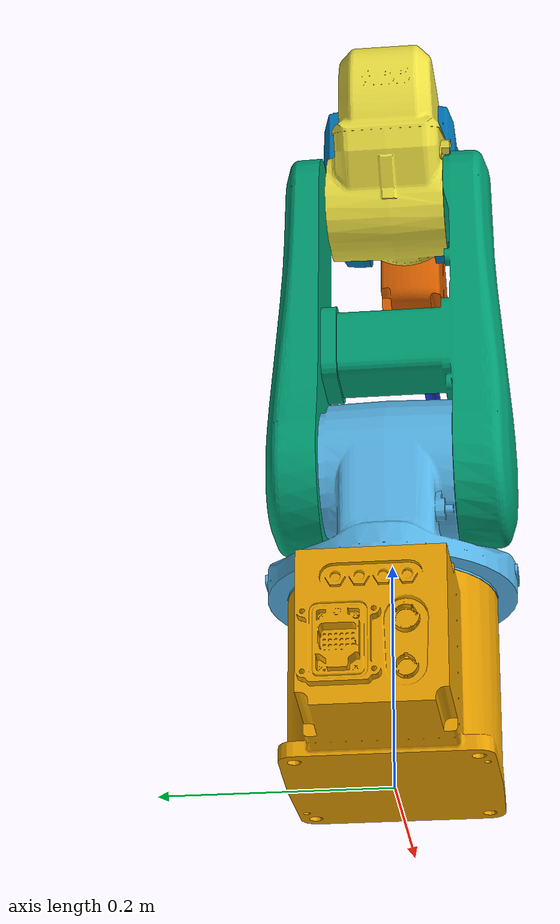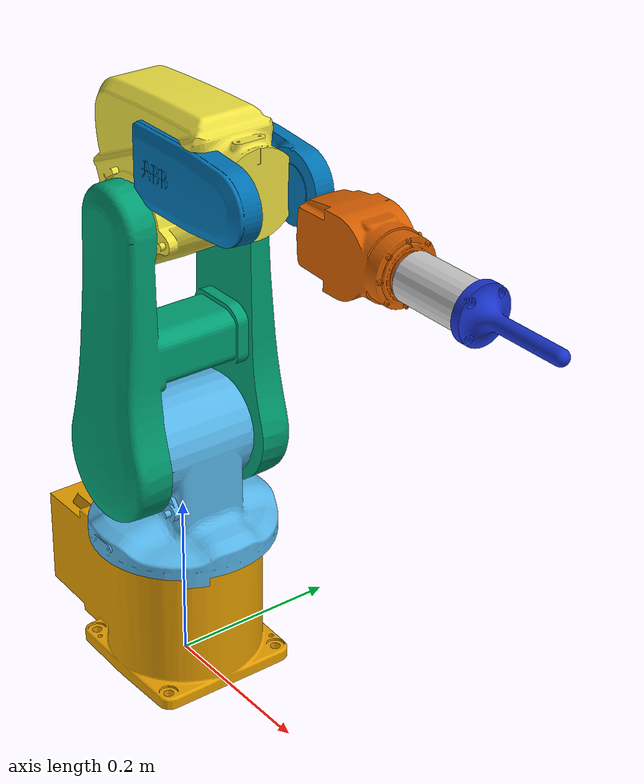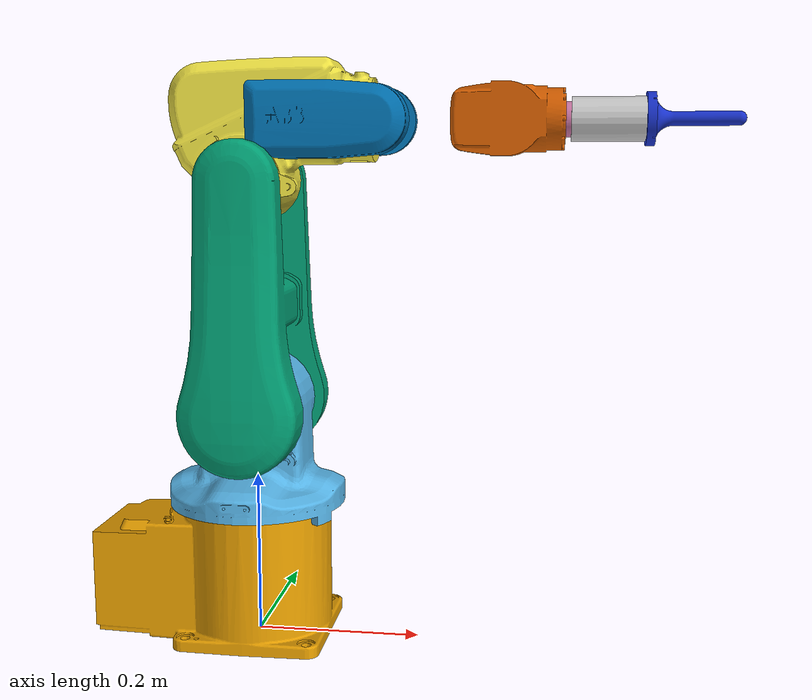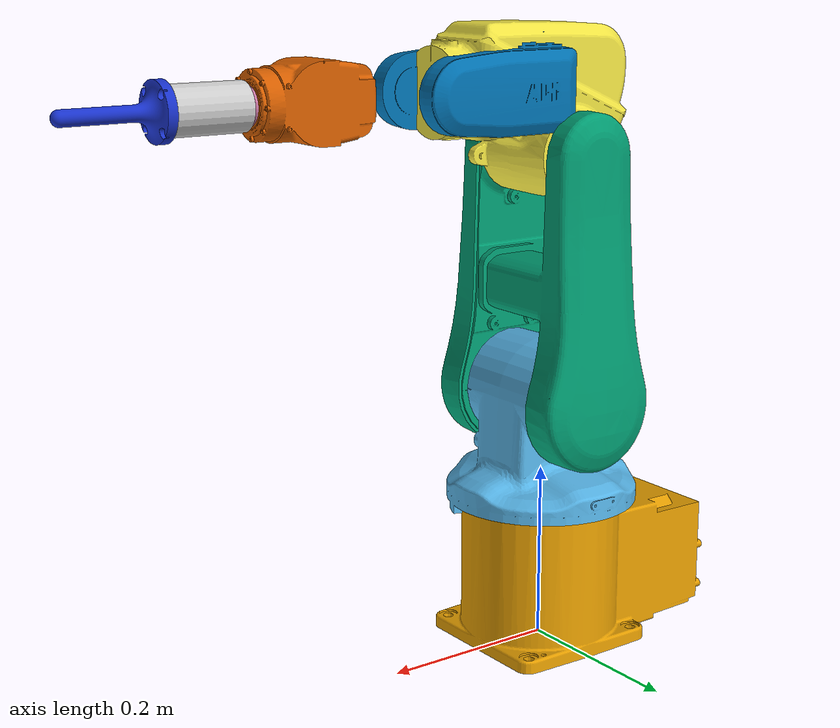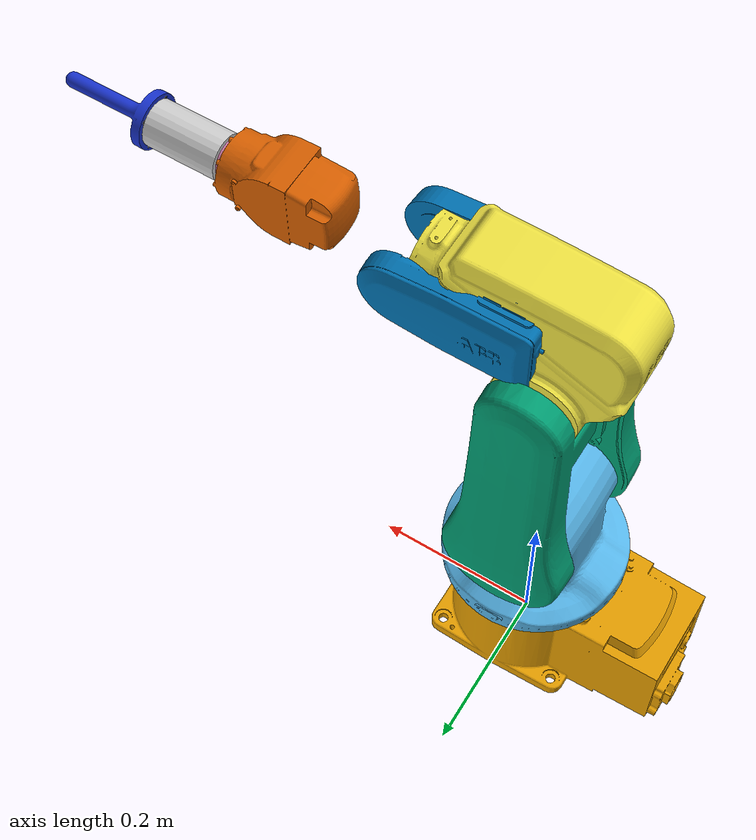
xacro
<?xml version="1.0"?>
<robot xmlns:xacro="http://www.ros.org/wiki/xacro" name="abb_irb120_3_58"> <!-- THIS HAS TO MATCH THE SEMANTIC DESCRIPTION MOVEIT HAS (see launch)-->

  <!-- Include the stock ABB IRB120 -->
  <!-- TODO: Should this be Gazebo? Or the default one under the parent irb120_support??? -->
  <xacro:include filename="$(find abb_irb120_support)/urdf/irb120_3_58.xacro"/>

  <!-- ====== Params you can tweak ====== -->
  <xacro:property name="tool_mass" value="0.25"/>          <!-- kg (sensor+finger) -->
  <xacro:property name="tool_cog_z" value="0.06"/>         <!-- m in tool frame -->
  <xacro:property name="ft_z" value="0.083"/>              <!-- FT sensor height -->
  <xacro:property name="adapter_z" value="0.0"/>         <!-- 0.01 adapter height -->
  <xacro:property name="finger_z" value="0.090"/>          <!-- finger length -->
  <!-- Total offset from link_6 to finger tip will be ft_z + adapter_z + finger_z -->

  <!-- ====== FT sensor link mounted to link_6 ====== -->
  <link name="ft_link">
    <inertial>
      <origin xyz="0 0 ${tool_cog_z}" rpy="0 0 0"/>
      <mass value="${tool_mass}"/>
      <!-- simple diagonal inertia; refine if you have CAD -->
      <inertia ixx="5e-4" iyy="5e-4" izz="5e-4" ixy="0" ixz="0" iyz="0"/>
    </inertial>
    <visual>
      <origin xyz="0 0 ${ft_z/2}" rpy="0 0 0"/>
      <geometry><cylinder radius="0.025" length="${ft_z}"/></geometry>
      <material name="Grey"><color rgba="0.8 0.8 0.8 1.0"/></material>
    </visual>
    <collision>
      <origin xyz="0 0 ${ft_z/2}" rpy="0 0 0"/>
      <geometry><cylinder radius="0.026" length="${ft_z}"/></geometry>
    </collision>
  </link>

  <joint name="link_6_to_ft" type="fixed">
    <parent link="link_6"/>
    <!-- Adjust xyz/rpy to match your real mounting orientation -->
    <origin xyz="0 0 0" rpy="0 1.5708 0"/>
    <child link="ft_link"/>
  </joint>

  <!-- ====== Finger adapter (optional spacer) ====== -->
  <link name="finger_adapter">
    <visual>
      <origin xyz="0 0 ${adapter_z/2}" rpy="0 0 0"/>
      <geometry><box size="0.04 0.04 ${adapter_z}"/></geometry>
      <material name="Black"><color rgba="0.1 0.1 0.1 1.0"/></material>
    </visual>
    <collision>
      <origin xyz="0 0 ${adapter_z/2}" rpy="0 0 0"/>
      <geometry><box size="0.042 0.042 ${adapter_z}"/></geometry>
    </collision>
  </link>

  <joint name="ft_to_adapter" type="fixed">
    <parent link="ft_link"/>
    <origin xyz="0 0 ${ft_z}" rpy="0 0 0"/>
    <child link="finger_adapter"/>
  </joint>

  <!-- ====== Finger link ====== -->
  <link name="finger_link">

    <!-- Inertial properties -->
    <inertial>
        <origin xyz="0 0 0.026" rpy="0 0 0"/>   <!-- adjust CoG -->
        <mass value="0.066"/>                   <!-- kg -->
        <inertia ixx="70.297" iyy="70.297" izz="70.297" ixy="0" ixz="0" iyz="0"/> <!-- kg mm^2-->
    </inertial>
    <!-- Visual mesh from Onshape export -->
    <visual>
        <origin xyz="0 0 0" rpy="0 0 0"/>      <!-- adjust offset/orientation if needed -->
        <geometry>
            <mesh filename="package://com_3d/meshes/finger_visual.stl" scale="1 1 1"/>
        </geometry>
        <material name="Blue">
            <color rgba="0.1 0.2 0.8 1.0"/>
        </material>
    </visual>
    <!-- Optional simplified collision geometry -->
    <collision>
        <origin xyz="0 0 0.05" rpy="0 0 0"/>   <!-- match your finger shape -->
        <geometry>
            <box size="0.02 0.02 0.10"/>         <!-- simpler shape for faster collision checking -->
        </geometry>
    </collision>
  </link>

  <joint name="adapter_to_finger" type="fixed">
    <parent link="finger_adapter"/>
    <origin xyz="0 0 ${adapter_z}" rpy="0 0 0"/> <!-- adjust as needed -->
    <child link="finger_link"/>
  </joint>

  <!-- ====== Convenience EE frames ====== -->
  <!-- tool0 at end of adapter (beginning of finger) -->

  <!-- finger_tip at the very end of the finger -->
  <link name="finger_tip"/>
  <joint name="finger_to_tip" type="fixed">
    <parent link="finger_link"/>
    <origin xyz="0 0 ${finger_z}" rpy="0 0 0"/>
    <child link="finger_tip"/>
  </joint>

</robot>

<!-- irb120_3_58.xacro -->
<robot name="abb_irb120_3_58" xmlns:xacro="http://ros.org/wiki/xacro">
  <xacro:include filename="$(find abb_irb120_support)/urdf/irb120_3_58_macro.xacro"/>
  <xacro:abb_irb120_3_58 prefix=""/>
</robot>

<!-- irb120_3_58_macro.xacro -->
<robot xmlns:xacro="http://ros.org/wiki/xacro">
  <xacro:include filename="$(find abb_resources)/urdf/common_materials.xacro"/>

  <xacro:macro name="abb_irb120_3_58" params="prefix">
    <!-- link list -->
    <link name="${prefix}base_link">
      <inertial>
        <mass value="6.215"/>
        <origin xyz="-0.04204 8.01E-05 0.07964" rpy="0 0 0"/>
        <inertia ixx="0.0247272" ixy="-8.0784E-05" ixz="0.00130902" iyy="0.0491285" iyz="-8.0419E-06" izz="0.0472376"/>
      </inertial>
      <visual>
        <origin xyz="0 0 0" rpy="0 0 0"/>
        <geometry>
          <mesh filename="package://abb_irb120_support/meshes/irb120_3_58/visual/base_link.stl"/>
        </geometry>
        <xacro:material_abb_orange />
      </visual>
      <collision>
        <origin xyz="0 0 0" rpy="0 0 0"/>
        <geometry>
          <mesh filename="package://abb_irb120_support/meshes/irb120_3_58/collision/base_link.stl"/>
        </geometry>
        <xacro:material_abb_yellow />
      </collision>
    </link>
    <link name="${prefix}link_1">
      <inertial>
        <mass value="3.067" />
        <origin xyz="9.77E-05 -0.00012 0.23841" rpy="0 0 0"/>
        <inertia ixx="0.0142175" ixy="-1.28579E-05" ixz="-2.31364E-05" iyy="0.0144041" iyz="1.93404E-05" izz="0.0104533"/>
      </inertial>
      <visual>
        <origin xyz="0 0 0" rpy="0 0 0"/>
        <geometry>
          <mesh filename="package://abb_irb120_support/meshes/irb120_3_58/visual/link_1.stl"/>
        </geometry>
        <xacro:material_abb_orange />
      </visual>
      <collision>
        <origin xyz="0 0 0" rpy="0 0 0"/>
        <geometry>
          <mesh filename="package://abb_irb120_support/meshes/irb120_3_58/collision/link_1.stl"/>
        </geometry>
        <xacro:material_abb_yellow />
      </collision>
    </link>
    <link name="${prefix}link_2">
      <inertial>
        <mass value="3.909"/>
        <origin xyz="0.00078 -0.00212 0.10124" rpy="0 0 0"/>
        <inertia ixx="0.0603111" ixy="9.83431E-06" ixz="5.72407E-05" iyy="0.041569" iyz="-0.00050497" izz="0.0259548"/>
      </inertial>
      <visual>
        <origin xyz="0 0 0" rpy="0 0 0"/>
        <geometry>
          <mesh filename="package://abb_irb120_support/meshes/irb120_3_58/visual/link_2.stl"/>
        </geometry>
        <xacro:material_abb_orange />
      </visual>
      <collision>
        <origin xyz="0 0 0" rpy="0 0 0"/>
        <geometry>
          <mesh filename="package://abb_irb120_support/meshes/irb120_3_58/collision/link_2.stl"/>
        </geometry>
        <xacro:material_abb_yellow />
      </collision>
    </link>
    <link name="${prefix}link_3">
      <inertial>
        <mass value="2.944"/>
        <origin xyz="0.02281 0.00106 0.05791" rpy="0 0 0"/>
        <inertia ixx="0.00835606" ixy="-8.01545E-05" ixz="0.00142884" iyy="0.016713" iyz="-0.000182227" izz="0.0126984"/>
      </inertial>
      <visual>
        <origin xyz="0 0 0" rpy="0 0 0"/>
        <geometry>
          <mesh filename="package://abb_irb120_support/meshes/irb120_3_58/visual/link_3.stl"/>
        </geometry>
        <xacro:material_abb_orange />
      </visual>
      <collision>
        <origin xyz="0 0 0" rpy="0 0 0"/>
        <geometry>
          <mesh filename="package://abb_irb120_support/meshes/irb120_3_58/collision/link_3.stl"/>
        </geometry>
        <xacro:material_abb_yellow />
      </collision>
    </link>
    <link name="${prefix}link_4">
      <inertial>
        <mass value="1.328"/>
        <origin xyz="0.2247 0.00015 0.00041" rpy="0 0 0"/>
        <inertia ixx="0.00284661" ixy="-2.12765E-05" ixz="-1.6435E-05" iyy="0.00401346" iyz="1.31336E-05" izz="0.0052535"/>
      </inertial>
      <visual>
        <origin xyz="0 0 0" rpy="0 0 0"/>
        <geometry>
          <mesh filename="package://abb_irb120_support/meshes/irb120_3_58/visual/link_4.stl"/>
        </geometry>
        <xacro:material_abb_orange />
      </visual>
      <collision>
        <origin xyz="0 0 0" rpy="0 0 0"/>
        <geometry>
          <mesh filename="package://abb_irb120_support/meshes/irb120_3_58/collision/link_4.stl"/>
        </geometry>
        <xacro:material_abb_yellow />
      </collision>
    </link>
    <link name="${prefix}link_5">
      <inertial>
        <mass value="0.546"/>
        <origin xyz="-0.00109 3.68E-05 6.22E-05" rpy="0 0 0"/>
        <inertia ixx="0.000404891" ixy="1.61943E-06" ixz="8.46805E-07" iyy="0.000892825" iyz="-1.51792E-08" izz="0.000815468"/>
      </inertial>
      <visual>
        <origin xyz="0 0 0" rpy="0 0 0"/>
        <geometry>
          <mesh filename="package://abb_irb120_support/meshes/irb120_3_58/visual/link_5.stl"/>
        </geometry>
        <xacro:material_abb_orange />
      </visual>
      <collision>
        <origin xyz="0 0 0" rpy="0 0 0"/>
        <geometry>
          <mesh filename="package://abb_irb120_support/meshes/irb120_3_58/collision/link_5.stl"/>
        </geometry>
        <xacro:material_abb_yellow />
      </collision>
    </link>
    <link name="${prefix}link_6">
      <inertial>
        <mass value="0.137"/>
        <origin xyz="-0.00706 -0.00017 -1.32E-06" rpy="0 0 0"/>
        <inertia ixx="0.001" ixy="0" ixz="0" iyy="0.001" iyz="0" izz="0.001"/>
      </inertial>
      <visual>
        <origin xyz="0 0 0" rpy="0 0 0"/>
        <geometry>
          <mesh filename="package://abb_irb120_support/meshes/irb120_3_58/visual/link_6.stl"/>
        </geometry>
        <xacro:material_abb_black />
      </visual>
      <collision>
        <origin xyz="0 0 0" rpy="0 0 0"/>
        <geometry>
          <mesh filename="package://abb_irb120_support/meshes/irb120_3_58/collision/link_6.stl"/>
        </geometry>
        <xacro:material_abb_yellow />
      </collision>
    </link>
    <!-- end of link list -->

    <!-- joint list -->
    <joint name="${prefix}joint_1" type="revolute">
      <origin rpy="0 0 0" xyz="0 0 0"/>
      <parent link="${prefix}base_link"/>
      <child link="${prefix}link_1"/>
      <limit effort="0" lower="-2.87979" upper="2.87979" velocity="4.36332"/>
      <axis xyz="0 0 1"/>
      <dynamics damping="0.0" friction="0.0"/>
    </joint>
    <joint name="${prefix}joint_2" type="revolute">
      <origin rpy="0 0 0" xyz="0 0 0.29"/>
      <parent link="${prefix}link_1"/>
      <child link="${prefix}link_2"/>
      <limit effort="0" lower="-1.91986" upper="1.91986" velocity="4.36332"/>
      <axis xyz="0 1 0"/>
      <dynamics damping="0.0" friction="0.0"/>
    </joint>
    <joint name="${prefix}joint_3" type="revolute">
      <origin rpy="0 0 0" xyz="0 0 0.27"/>
      <parent link="${prefix}link_2"/>
      <child link="${prefix}link_3"/>
      <limit effort="0" lower="-1.91986" upper="1.22173" velocity="4.36332"/>
      <axis xyz="0 1 0"/>
      <dynamics damping="0.0" friction="0.0"/>
    </joint>
    <joint name="${prefix}joint_4" type="revolute">
      <origin rpy="0 0 0" xyz="0 0 0.07"/>
      <parent link="${prefix}link_3"/>
      <child link="${prefix}link_4"/>
      <limit effort="0" lower="-2.79253" upper="2.79253" velocity="5.58505"/>
      <axis xyz="1 0 0"/>
      <dynamics damping="0.0" friction="0.0"/>
    </joint>
    <joint name="${prefix}joint_5" type="revolute">
      <origin rpy="0 0 0" xyz="0.302 0 0"/>
      <parent link="${prefix}link_4"/>
      <child link="${prefix}link_5"/>
      <limit effort="0" lower="-2.094395" upper="2.094395" velocity="5.58505"/>
      <axis xyz="0 1 0"/>
      <dynamics damping="0.0" friction="0.0"/>
    </joint>
    <joint name="${prefix}joint_6" type="revolute">
      <origin rpy="0 0 0" xyz="0.072 0 0"/>
      <parent link="${prefix}link_5"/>
      <child link="${prefix}link_6"/>
      <limit effort="0" lower="-6.98132" upper="6.98132" velocity="7.33038"/>
      <axis xyz="1 0 0"/>
      <dynamics damping="0.0" friction="0.0"/>
    </joint>
    <!-- end of joint list -->

    <!-- ROS-Industrial 'base' frame: base_link to ABB World Coordinates transform -->
    <link name="${prefix}base" />
    <joint name="${prefix}base_link-base" type="fixed">
      <origin xyz="0 0 0" rpy="0 0 0"/>
      <parent link="${prefix}base_link"/>
      <child link="${prefix}base"/>
    </joint>

    <!-- ROS-Industrial 'flange' frame: attachment point for EEF models -->
    <link name="${prefix}flange"/>
    <joint type="fixed" name="${prefix}joint_6-flange">
      <origin xyz="0 0 0" rpy="0 0 0"/>
      <parent link="${prefix}link_6"/>
      <child link="${prefix}flange"/>
    </joint>

    <!-- ROS-Industrial 'tool0' frame: all-zeros tool frame -->
    <link name="${prefix}tool0" />
    <joint name="${prefix}link_6-tool0" type="fixed">
      <origin xyz="0 0 0" rpy="0 ${radians(90)} 0" />
      <parent link="${prefix}flange" />
      <child link="${prefix}tool0" />
    </joint>
  </xacro:macro>
</robot>
